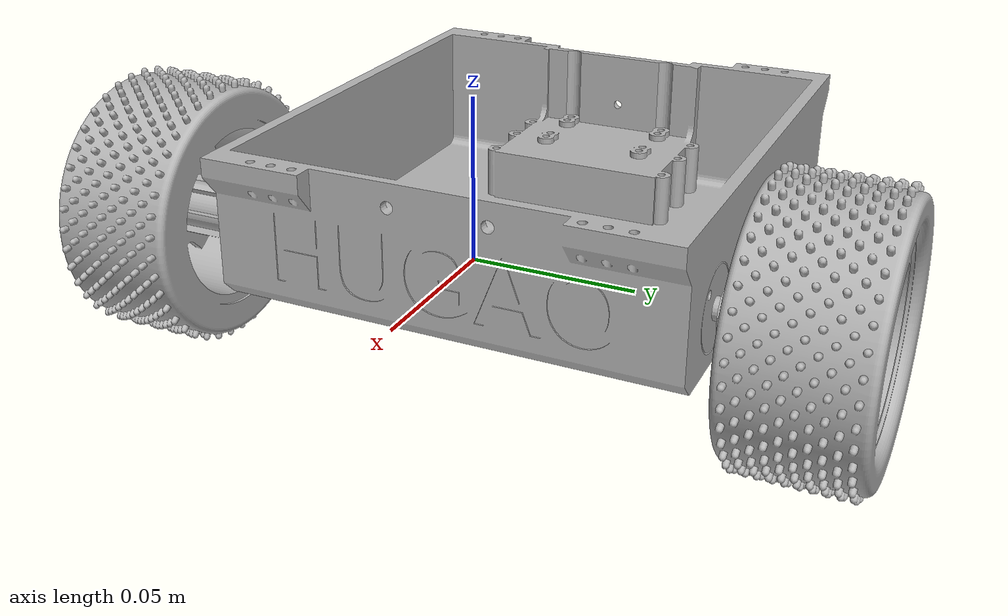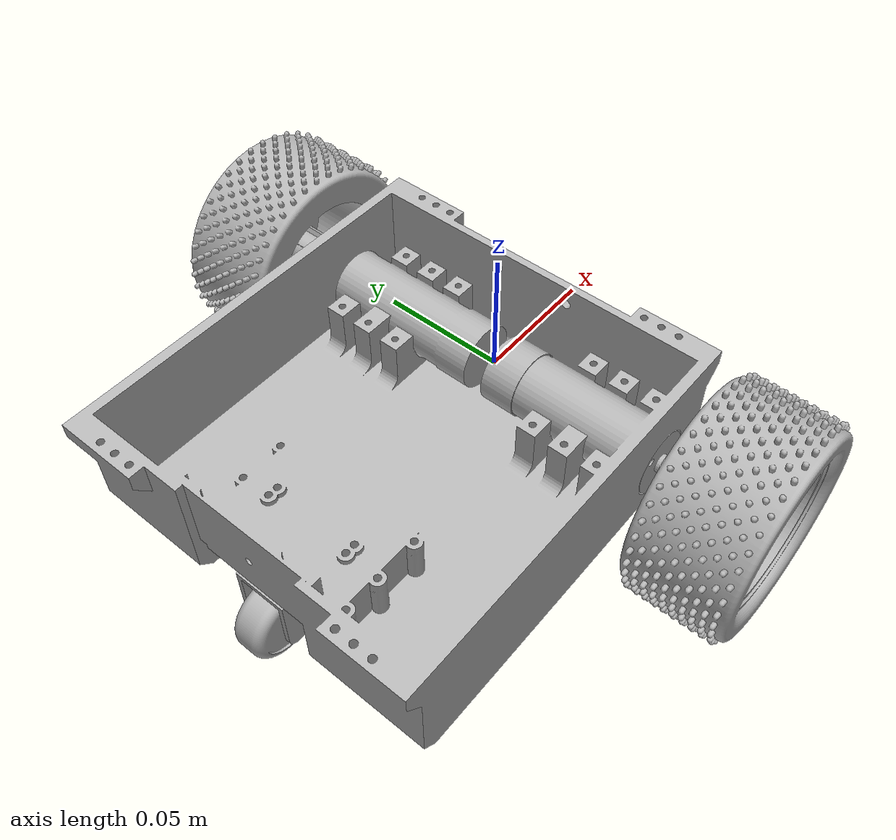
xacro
<?xml version="1.0" ?>
<robot xmlns:xacro="http://www.ros.org/wiki/xacro">

<xacro:include filename="$(find rodney_robot)/description/urdf/materials.xacro" />
<xacro:include filename="$(find rodney_robot)/description/urdf/rodney.trans" />
<xacro:include filename="$(find rodney_robot)/description/urdf/rodney.gazebo" />

<link name="base_link">
</link>

<link name="chassis_link">
  <inertial>
    <origin xyz="-0.03638890323584076 0.00033381274266510303 -0.0009923244072889764" rpy="0 0 0"/>
    <mass value="0.2891714366272069"/>
    <inertia ixx="0.000734" iyy="0.000746" izz="0.001383" ixy="0.0" iyz="0.0" ixz="7e-06"/>
  </inertial>
  <visual>
    <origin xyz="0 0 0" rpy="0 0 0"/>
    <geometry>
      <mesh filename="file://$(find rodney_robot)/description/meshes/chassis.stl" scale="0.001 0.001 0.001"/>
    </geometry>
    <material name="silver"/>
  </visual>
  <collision>
    <origin xyz="0 0 0" rpy="0 0 0"/>
    <geometry>
      <mesh filename="file://$(find rodney_robot)/description/meshes/chassis.stl" scale="0.001 0.001 0.001"/>
    </geometry>
  </collision>
</link>

<link name="left_wheel">
  <inertial>
    <origin xyz="1.4140737493464624e-10 0.02712612921800449 2.515423781034925e-09" rpy="0 0 0"/>
    <mass value="0.12747325111716779"/>
    <inertia ixx="8.5e-05" iyy="0.000138" izz="8.5e-05" ixy="0.0" iyz="0.0" ixz="-0.0"/>
  </inertial>
  <visual>
    <origin xyz="-0.0 -0.075834 0.0" rpy="0 0 0"/>
    <geometry>
      <mesh filename="file://$(find rodney_robot)/description/meshes/l_wheel.stl" scale="0.001 0.001 0.001"/>
    </geometry>
    <material name="silver"/>
  </visual>
  <collision>
    <origin xyz="-0.0 -0.075834 0.0" rpy="0 0 0"/>
    <geometry>
      <mesh filename="file://$(find rodney_robot)/description/meshes/l_wheel.stl" scale="0.001 0.001 0.001"/>
    </geometry>
  </collision>
</link>

<link name="right_wheel">
  <inertial>
    <origin xyz="-1.462333073595353e-10 -0.027125323053898948 -4.866661880101131e-10" rpy="0 0 0"/>
    <mass value="0.12747321823457233"/>
    <inertia ixx="8.5e-05" iyy="0.000138" izz="8.5e-05" ixy="-0.0" iyz="-0.0" ixz="0.0"/>
  </inertial>
  <visual>
    <origin xyz="-0.0 0.075166 0.0" rpy="0 0 0"/>
    <geometry>
      <mesh filename="file://$(find rodney_robot)/description/meshes/r_wheel.stl" scale="0.001 0.001 0.001"/>
    </geometry>
    <material name="silver"/>
  </visual>
  <collision>
    <origin xyz="-0.0 0.075166 0.0" rpy="0 0 0"/>
    <geometry>
      <mesh filename="file://$(find rodney_robot)/description/meshes/r_wheel.stl" scale="0.001 0.001 0.001"/>
    </geometry>
  </collision>
</link>

<link name="caster_bearing">
  <inertial>
    <origin xyz="-0.0035963556426756443 4.036926356211696e-07 -0.009484614194536601" rpy="0 0 0"/>
    <mass value="0.004064212904502371"/>
    <inertia ixx="1e-06" iyy="0.0" izz="0.0" ixy="0.0" iyz="0.0" ixz="-0.0"/>
  </inertial>
  <visual>
    <origin xyz="0.106985 -0.000334 0.003964" rpy="0 0 0"/>
    <geometry>
      <mesh filename="file://$(find rodney_robot)/description/meshes/c_casterbearing.stl" scale="0.001 0.001 0.001"/>
    </geometry>
    <material name="silver"/>
  </visual>
  <collision>
    <origin xyz="0.106985 -0.000334 0.003964" rpy="0 0 0"/>
    <geometry>
      <mesh filename="file://$(find rodney_robot)/description/meshes/c_casterbearing.stl" scale="0.001 0.001 0.001"/>
    </geometry>
  </collision>
</link>

<link name="caster_wheel">
  <inertial>
    <origin xyz="3.934941779221157e-07 4.0369280697699194e-07 -3.9240300532192296e-07" rpy="0 0 0"/>
    <mass value="0.008247924295162197"/>
    <inertia ixx="1e-06" iyy="1e-06" izz="1e-06" ixy="0.0" iyz="-0.0" ixz="0.0"/>
  </inertial>
  <visual>
    <origin xyz="0.116695 -0.000334 0.026964" rpy="0 0 0"/>
    <geometry>
      <mesh filename="file://$(find rodney_robot)/description/meshes/c_wheel.stl" scale="0.001 0.001 0.001"/>
    </geometry>
    <material name="silver"/>
  </visual>
  <collision>
    <origin xyz="0.116695 -0.000334 0.026964" rpy="0 0 0"/>
    <geometry>
      <mesh filename="file://$(find rodney_robot)/description/meshes/c_wheel.stl" scale="0.001 0.001 0.001"/>
    </geometry>
  </collision>
</link>

<joint name="chassis_link_joint" type="fixed">
  <parent link="base_link"/>
  <child link="chassis_link"/>
</joint>

<joint name="left_wheel_joint" type="continuous">
  <origin xyz="0.0 0.075834 0.0" rpy="0 0 0"/>
  <parent link="chassis_link"/>
  <child link="left_wheel"/>
  <axis xyz="-0.0 1.0 0.0"/>
</joint>

<joint name="right_wheel_joint" type="continuous">
  <origin xyz="0.0 -0.075166 0.0" rpy="0 0 0"/>
  <parent link="chassis_link"/>
  <child link="right_wheel"/>
  <axis xyz="0.0 -1.0 -0.0"/>
</joint>

<joint name="caster_bearing_joint" type="continuous">
  <origin xyz="-0.106985 0.000334 -0.003964" rpy="0 0 0"/>
  <parent link="chassis_link"/>
  <child link="caster_bearing"/>
  <axis xyz="0.0 0.0 -1.0"/>
</joint>

<joint name="caster_wheel_joint" type="continuous">
  <origin xyz="-0.00971 0.0 -0.023" rpy="0 0 0"/>
  <parent link="caster_bearing"/>
  <child link="caster_wheel"/>
  <axis xyz="0.0 1.0 0.0"/>
</joint>

</robot>

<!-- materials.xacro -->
<robot xmlns:xacro="http://www.ros.org/wiki/xacro" >

<material name="silver">
  <color rgba="0.7 0.7 0.7 1"/>
</material>

</robot>

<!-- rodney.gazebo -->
<robot xmlns:xacro="http://www.ros.org/wiki/xacro" >

<xacro:property name="body_color" value="Gazebo/Silver" />

<gazebo>
  <plugin name="control" filename="libgazebo_ros_control.so"/>
</gazebo>
<gazebo reference="base_link">
  <material>${body_color}</material>
  <mu1>0.2</mu1>
  <mu2>0.2</mu2>
  <selfCollide>true</selfCollide>
  <gravity>true</gravity>
</gazebo>
<gazebo reference="chassis_link">
  <material>${body_color}</material>
  <mu1>0.2</mu1>
  <mu2>0.2</mu2>
  <selfCollide>true</selfCollide>
</gazebo>
<gazebo reference="left_wheel">
  <material>${body_color}</material>
  <mu1>0.2</mu1>
  <mu2>0.2</mu2>
  <selfCollide>true</selfCollide>
</gazebo>

<gazebo reference="right_wheel">
  <material>${body_color}</material>
  <mu1>0.2</mu1>
  <mu2>0.2</mu2>
  <selfCollide>true</selfCollide>
</gazebo>

<gazebo reference="caster_bearing">
  <material>${body_color}</material>
  <mu1>0.2</mu1>
  <mu2>0.2</mu2>
  <selfCollide>true</selfCollide>
</gazebo>

<gazebo reference="caster_wheel">
  <material>${body_color}</material>
  <mu1>0.2</mu1>
  <mu2>0.2</mu2>
  <selfCollide>true</selfCollide>
</gazebo>

</robot>
